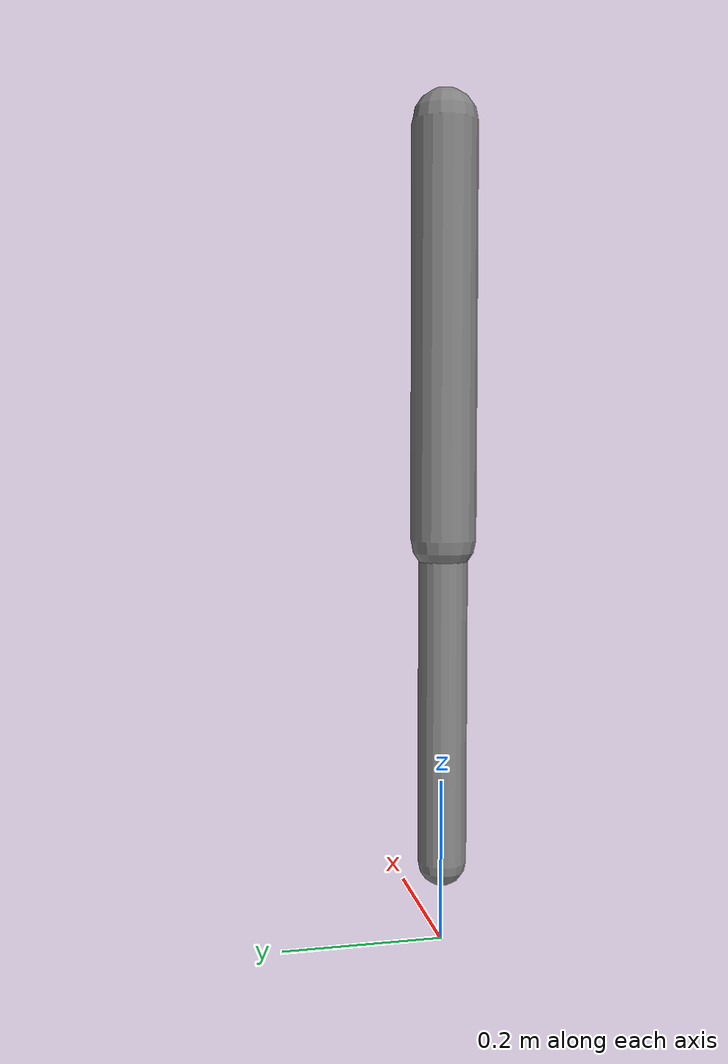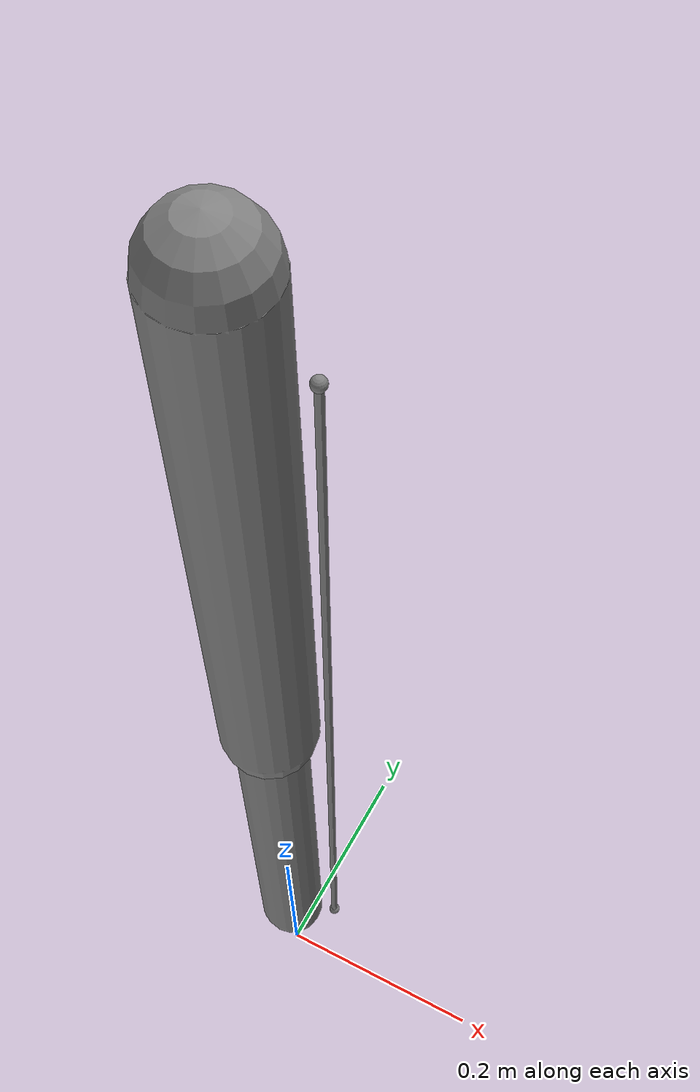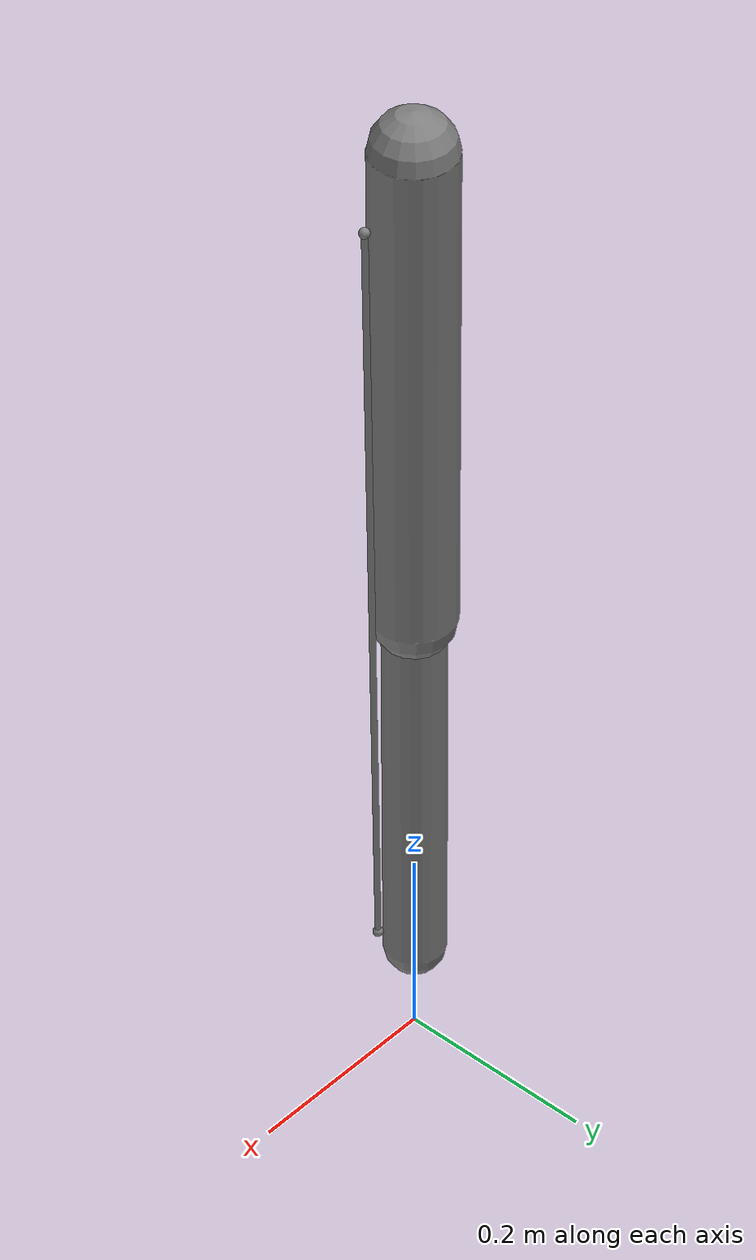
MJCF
<mujoco model="tendon-limits">
  <option gravity="0 0 0" timestep="0.002"/>
  <compiler angle="radian"/>
  <worldbody>
    <body name="upper" pos="0 0 1">
      <joint name="shoulder" type="hinge" axis="0 1 0" damping="1.0"/>
      <geom type="capsule" size="0.04" fromto="0 0 0 0 0 -0.5" mass="1.0"/>
      <site name="s1" pos="0.06 0 -0.05"/>
      <body name="lower" pos="0 0 -0.5">
        <joint name="elbow" type="hinge" axis="0 1 0" damping="1.0"/>
        <geom type="capsule" size="0.03" fromto="0 0 0 0 0 -0.4" mass="0.5"/>
        <site name="s2" pos="0.05 0 -0.35"/>
      </body>
    </body>
  </worldbody>
  <tendon>
    <spatial name="t1" limited="true" range="0.2 0.9">
      <site site="s1"/>
      <site site="s2"/>
    </spatial>
  </tendon>
  <sensor>
    <tendonlimitfrc name="tlf" tendon="t1"/>
  </sensor>
  <actuator>
    <motor name="drive_sh" joint="shoulder" gear="5"/>
    <motor name="drive_el" joint="elbow" gear="5"/>
  </actuator>
</mujoco>
